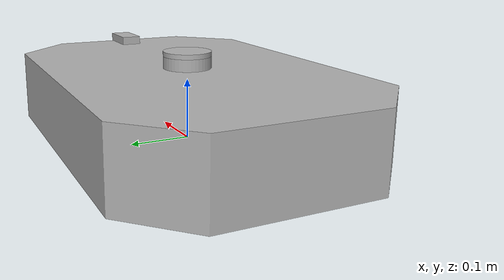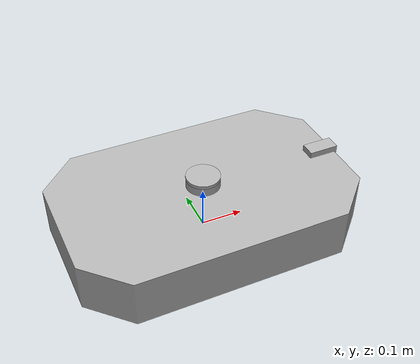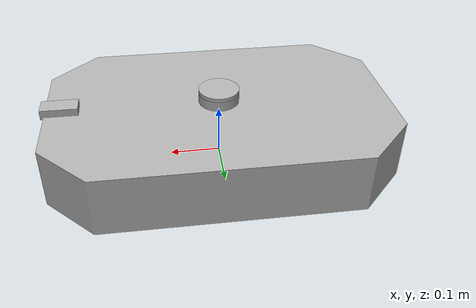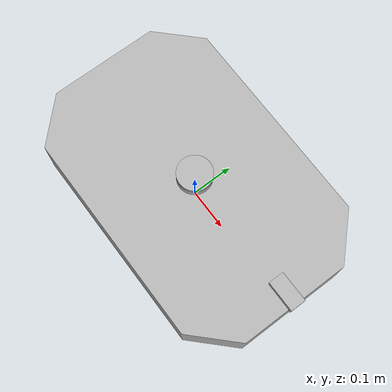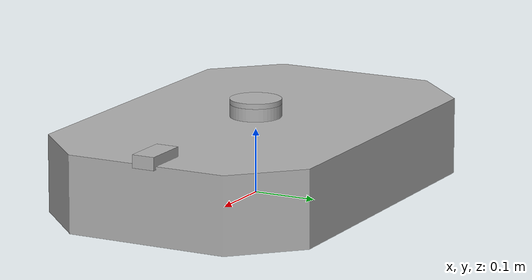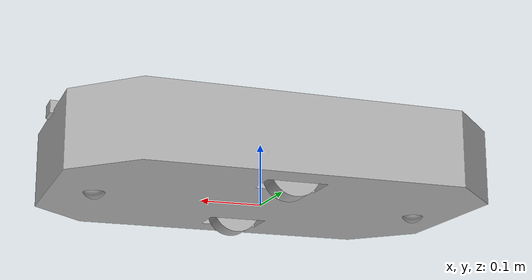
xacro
<?xml version="1.0" ?>
<robot name="SWARM" xmlns:xacro="http://www.ros.org/wiki/xacro">

<xacro:include filename="$(find SWARM_description)/urdf/materials.xacro" />
<xacro:include filename="$(find SWARM_description)/urdf/SWARM.ros2control" />
<xacro:include filename="$(find SWARM_description)/urdf/SWARM.gazebo" />

<link name="base_footprint"/>

<joint name="base_footprint_joint" type="fixed">
  <origin xyz="0 0 0" rpy="0 0 0"/>
  <parent link="base_footprint"/>
  <child link="base_link"/>
</joint>

<link name="base_link">
  <inertial>
    <origin xyz="-6.463913954572466e-07 0.0 0.061218450595844895" rpy="0 0 0"/>
    <mass value="12.43947432540084"/>
    <inertia ixx="0.2276794" iyy="0.4779003" izz="0.6581208" ixy="0.0" iyz="0.0" ixz="-4e-06"/>
  </inertial>
  <visual>
    <origin xyz="0 0 0" rpy="0 0 0"/>
    <geometry>
      <mesh filename="file://$(find SWARM_description)/meshes/base_link.stl" scale="0.001 0.001 0.001"/>
    </geometry>
    <material name="silver"/>
  </visual>
  <collision>
    <origin xyz="0 0 0" rpy="0 0 0"/>
    <geometry>
      <mesh filename="file://$(find SWARM_description)/meshes/base_link.stl" scale="0.001 0.001 0.001"/>
    </geometry>
  </collision>
</link>

<link name="lidar_1">
  <inertial>
    <origin xyz="-2.220446049250313e-18 -1.3877787807814457e-19 0.003999999999999976" rpy="0 0 0"/>
    <mass value="0.3156672298327027"/>
    <inertia ixx="0.000128" iyy="0.000128" izz="0.000253" ixy="0.0" iyz="0.0" ixz="0.0"/>
  </inertial>
  <visual>
    <origin xyz="-0.0 -0.0 -0.14" rpy="0 0 0"/>
    <geometry>
      <mesh filename="file://$(find SWARM_description)/meshes/lidar_1.stl" scale="0.001 0.001 0.001"/>
    </geometry>
    <material name="silver"/>
  </visual>
  <collision>
    <origin xyz="-0.0 -0.0 -0.14" rpy="0 0 0"/>
    <geometry>
      <mesh filename="file://$(find SWARM_description)/meshes/lidar_1.stl" scale="0.001 0.001 0.001"/>
    </geometry>
  </collision>
</link>

<link name="camera_1">
  <inertial>
    <origin xyz="-0.030000000000000082 -7.105427357601002e-17 0.010000000000000009" rpy="0 0 0"/>
    <mass value="0.4069439999999993"/>
    <inertia ixx="5.8e-05" iyy="0.000189" izz="0.00022" ixy="-0.0" iyz="0.0" ixz="0.0"/>
  </inertial>
  <visual>
    <origin xyz="-0.34 0.0 -0.125" rpy="0 0 0"/>
    <geometry>
      <mesh filename="file://$(find SWARM_description)/meshes/camera_1.stl" scale="0.001 0.001 0.001"/>
    </geometry>
    <material name="silver"/>
  </visual>
  <collision>
    <origin xyz="-0.34 0.0 -0.125" rpy="0 0 0"/>
    <geometry>
      <mesh filename="file://$(find SWARM_description)/meshes/camera_1.stl" scale="0.001 0.001 0.001"/>
    </geometry>
  </collision>
</link>

<link name="front_caster_1">
  <inertial>
    <origin xyz="-0.07 -7.105427357601002e-17 -0.0075" rpy="0 0 0"/>
    <mass value="0.1315280124302927"/>
    <inertia ixx="1.4e-05" iyy="1.4e-05" izz="2.1e-05" ixy="-0.0" iyz="-0.0" ixz="-0.0"/>
  </inertial>
  <visual>
    <origin xyz="-0.34 0.0 -0.0" rpy="0 0 0"/>
    <geometry>
      <mesh filename="file://$(find SWARM_description)/meshes/front_caster_1.stl" scale="0.001 0.001 0.001"/>
    </geometry>
    <material name="silver"/>
  </visual>
  <collision>
    <origin xyz="-0.34 0.0 -0.0" rpy="0 0 0"/>
    <geometry>
      <mesh filename="file://$(find SWARM_description)/meshes/front_caster_1.stl" scale="0.001 0.001 0.001"/>
    </geometry>
  </collision>
</link>

<link name="back_caster_1">
  <inertial>
    <origin xyz="0.07 5.134781488891349e-17 -0.007500000000000004" rpy="0 0 0"/>
    <mass value="0.1315280124302927"/>
    <inertia ixx="1.4e-05" iyy="1.4e-05" izz="2.1e-05" ixy="0.0" iyz="0.0" ixz="0.0"/>
  </inertial>
  <visual>
    <origin xyz="0.34 -0.0 -0.0" rpy="0 0 0"/>
    <geometry>
      <mesh filename="file://$(find SWARM_description)/meshes/back_caster_1.stl" scale="0.001 0.001 0.001"/>
    </geometry>
    <material name="silver"/>
  </visual>
  <collision>
    <origin xyz="0.34 -0.0 -0.0" rpy="0 0 0"/>
    <geometry>
      <mesh filename="file://$(find SWARM_description)/meshes/back_caster_1.stl" scale="0.001 0.001 0.001"/>
    </geometry>
  </collision>
</link>

<link name="left_wheel_1">
  <inertial>
    <origin xyz="-8.076544029899345e-08 0.020000000000000018 1.380766763044161e-07" rpy="0 0 0"/>
    <mass value="1.5783361491635122"/>
    <inertia ixx="0.000842" iyy="0.001263" izz="0.000842" ixy="0.0" iyz="-0.0" ixz="-0.0"/>
  </inertial>
  <visual>
    <origin xyz="-0.000252 -0.12 -0.02008" rpy="0 0 0"/>
    <geometry>
      <mesh filename="file://$(find SWARM_description)/meshes/left_wheel_1.stl" scale="0.001 0.001 0.001"/>
    </geometry>
    <material name="silver"/>
  </visual>
  <collision>
    <origin xyz="-0.000252 -0.12 -0.02008" rpy="0 0 0"/>
    <geometry>
      <mesh filename="file://$(find SWARM_description)/meshes/left_wheel_1.stl" scale="0.001 0.001 0.001"/>
    </geometry>
  </collision>
</link>

<link name="right_wheel_1">
  <inertial>
    <origin xyz="-8.076544036334085e-08 -0.01999999999999999 1.3807667632176335e-07" rpy="0 0 0"/>
    <mass value="1.578336149163511"/>
    <inertia ixx="0.000842" iyy="0.001263" izz="0.000842" ixy="0.0" iyz="-0.0" ixz="0.0"/>
  </inertial>
  <visual>
    <origin xyz="-0.000252 0.12 -0.02008" rpy="0 0 0"/>
    <geometry>
      <mesh filename="file://$(find SWARM_description)/meshes/right_wheel_1.stl" scale="0.001 0.001 0.001"/>
    </geometry>
    <material name="silver"/>
  </visual>
  <collision>
    <origin xyz="-0.000252 0.12 -0.02008" rpy="0 0 0"/>
    <geometry>
      <mesh filename="file://$(find SWARM_description)/meshes/right_wheel_1.stl" scale="0.001 0.001 0.001"/>
    </geometry>
  </collision>
</link>

<joint name="lidar_joint" type="fixed">
  <origin xyz="0.0 0.0 0.14" rpy="0 0 0"/>
  <parent link="base_link"/>
  <child link="lidar_1"/>
</joint>

<joint name="camera_joint" type="fixed">
  <origin xyz="0.34 0.0 0.12" rpy="0 0 0"/>
  <parent link="base_link"/>
  <child link="camera_1"/>
</joint>

<joint name="front_caster_joint" type="fixed">
  <origin xyz="0.34 0.0 0.01" rpy="0 0 0"/>
  <parent link="base_link"/>
  <child link="front_caster_1"/>
</joint>

<joint name="back_caster_joint" type="fixed">
  <origin xyz="-0.34 0.0 0.01" rpy="0 0 0"/>
  <parent link="base_link"/>
  <child link="back_caster_1"/>
</joint>

<joint name="left_wheel_joint" type="continuous">
  <origin xyz="0.000252 0.12 0.02008" rpy="0 0 0"/>
  <parent link="base_link"/>
  <child link="left_wheel_1"/>
  <axis xyz="0.0 1.0 0.0"/>
</joint>

<joint name="right_wheel_joint" type="continuous">
  <origin xyz="0.000252 -0.12 0.02008" rpy="0 0 0"/>
  <parent link="base_link"/>
  <child link="right_wheel_1"/>
  <axis xyz="0.0 1.0 0.0"/>
</joint>

<gazebo reference="front_caster_1">
  <mu1>0.0</mu1>
  <mu2>0.0</mu2>
</gazebo>

<gazebo reference="back_caster_1">
  <mu1>0.0</mu1>
  <mu2>0.0</mu2>
</gazebo>

<gazebo reference="lidar_1">
  <sensor name="gpu_lidar" type="gpu_lidar">
    <pose>0 0 0 0 0 0</pose>
    <topic>scan</topic>
    <gz_frame_id>lidar_1</gz_frame_id>
    <always_on>1</always_on>
    <update_rate>10</update_rate>
    <visualize>true</visualize>
    <ray>
      <scan>
        <horizontal>
          <samples>640</samples>
          <resolution>1</resolution>
          <min_angle>-3.1415926</min_angle>
          <max_angle>3.1415926</max_angle>
        </horizontal>
      </scan>
      <range>
        <min>0.08</min>
        <max>12.0</max>
        <resolution>0.01</resolution>
      </range>
    </ray>
  </sensor>
</gazebo>

<gazebo>
  <plugin filename="gz-sim-diff-drive-system" name="gz::sim::systems::DiffDrive">
    <left_joint>left_wheel_joint</left_joint>
    <right_joint>right_wheel_joint</right_joint>
    <wheel_separation>0.28</wheel_separation>
    <wheel_radius>0.0399</wheel_radius>
    <max_linear_acceleration>100.0</max_linear_acceleration>
    <max_angular_acceleration>100.0</max_angular_acceleration>
    <topic>cmd_vel</topic>
    <odom_topic>odom</odom_topic>
    <tf_topic>/tf</tf_topic>
    <frame_id>odom</frame_id>
    <child_frame_id>base_footprint</child_frame_id>
    <publish_odom>true</publish_odom>
    <publish_odom_tf>true</publish_odom_tf>
  </plugin>
</gazebo>

<gazebo>
  <plugin filename="gz-sim-joint-state-publisher-system" name="gz::sim::systems::JointStatePublisher">
    <topic>joint_states</topic>
    <update_rate>30</update_rate>
  </plugin>
</gazebo>

<gazebo>
  <plugin filename="gz-sim-pose-publisher-system" name="gz::sim::systems::PosePublisher">
    <publish_link_pose>true</publish_link_pose>
    <publish_sensor_pose>true</publish_sensor_pose>
    <publish_collision_pose>false</publish_collision_pose>
    <publish_visual_pose>false</publish_visual_pose>
    <publish_nested_models>true</publish_nested_models>
    <use_pose_vector_msg>true</use_pose_vector_msg>
    <static_publisher>true</static_publisher>
    <static_update_frequency>10</static_update_frequency>
  </plugin>
</gazebo>

</robot>

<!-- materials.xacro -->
<robot name="SWARM" xmlns:xacro="http://www.ros.org/wiki/xacro" >

<material name="silver">
  <color rgba="0.700 0.700 0.700 1.000"/>
</material>

</robot>

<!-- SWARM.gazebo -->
<robot name="SWARM" xmlns:xacro="http://www.ros.org/wiki/xacro" >

<xacro:property name="body_color" value="Gazebo/Silver" />

<gazebo reference="base_link">
  <material>${body_color}</material>
  <mu1>0.2</mu1>
  <mu2>0.2</mu2>
  <self_collide>true</self_collide>
  <gravity>true</gravity>
</gazebo>

<gazebo reference="lidar_1">
  <material>${body_color}</material>
  <mu1>0.2</mu1>
  <mu2>0.2</mu2>
  <self_collide>true</self_collide>
</gazebo>

<gazebo reference="camera_1">
  <material>${body_color}</material>
  <mu1>0.2</mu1>
  <mu2>0.2</mu2>
  <self_collide>true</self_collide>
</gazebo>

<gazebo reference="front_caster_1">
  <material>${body_color}</material>
  <mu1>0.2</mu1>
  <mu2>0.2</mu2>
  <self_collide>true</self_collide>
</gazebo>

<gazebo reference="back_caster_1">
  <material>${body_color}</material>
  <mu1>0.2</mu1>
  <mu2>0.2</mu2>
  <self_collide>true</self_collide>
</gazebo>

<gazebo reference="left_wheel_1">
  <material>${body_color}</material>
  <mu1>0.2</mu1>
  <mu2>0.2</mu2>
  <self_collide>true</self_collide>
</gazebo>

<gazebo reference="right_wheel_1">
  <material>${body_color}</material>
  <mu1>0.2</mu1>
  <mu2>0.2</mu2>
  <self_collide>true</self_collide>
</gazebo>

</robot>
